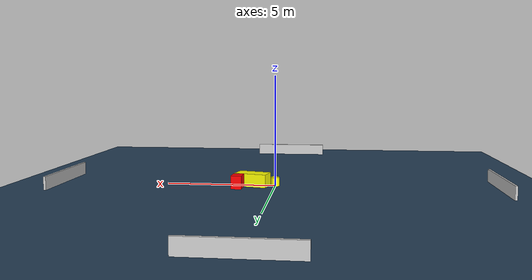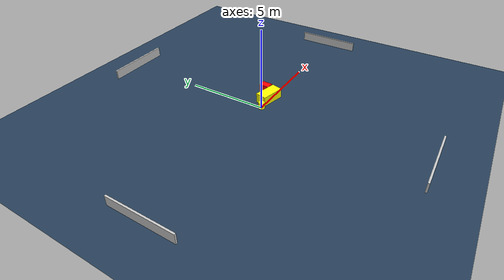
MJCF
<?xml version="1.0" ?>
<mujoco model="generated_environment">
  <option timestep="0.01" integrator="RK4" cone="elliptic"/>
  <default>
    <geom density="1"/>
  </default>
  <asset>
    <texture builtin="gradient" height="3072" name="skybox" rgb1="0.3 0.5 0.7" rgb2="0 0 0" type="skybox" width="512"/>
    <texture builtin="checker" height="300" name="groundplane" rgb1="0.2 0.3 0.4" rgb2="0.1 0.2 0.3" type="2d" width="300"/>
    <material name="groundplane" reflectance="0.2" texrepeat="5 5" texture="groundplane"/>
  </asset>
  <worldbody>
    <light dir="0 0 -1" directional="true" pos="0 0 1.5"/>
    <geom condim="3" friction="0.5 0.005 0.001" material="groundplane" name="floor" pos="0 0 0" size="0 0 0.05" type="plane"/>
    <body name="walls">
      <geom name="wall_1" condim="4" pos="-10.0 0.0 0.3" rgba="0.800000011920929 0.800000011920929 0.800000011920929 1.0" size="0.05 2.0 0.3" type="box"/>
      <geom name="wall_2" condim="4" pos="10.0 0.0 0.3" rgba="0.800000011920929 0.800000011920929 0.800000011920929 1.0" size="0.05 2.0 0.3" type="box"/>
      <geom name="wall_3" condim="4" pos="0.0 -10.0 0.3" rgba="0.800000011920929 0.800000011920929 0.800000011920929 1.0" size="2.0 0.05 0.3" type="box"/>
      <geom name="wall_4" condim="4" pos="0.0 10.0 0.3" rgba="0.800000011920929 0.800000011920929 0.800000011920929 1.0" size="2.0 0.05 0.3" type="box"/>
    </body>
    <body name="robot">
      <joint name="joint_x" type="slide" pos="0 0 0" axis="1 0 0"/>
      <joint name="joint_y" type="slide" pos="0 0 0" axis="0 1 0"/>
      <geom name="robot" type="cylinder" pos="0.0 0.0 0.2" size="0.2 0.2 0.0" mass="5.0" friction="1.0 0.005 0.0001" condim="4" rgba="1.0 1.0 0.0 1.0"/>
    </body>
    <body name="obstacle_1_movable">
      <geom name="obstacle_1_movable" condim="4" pos="1.0228989558811665 0.08777769086713914 0.3" euler="0 0 256.49517273011577" friction="0.0 0.005 0.001" rgba="1.0 1.0 0.0 1.0" size="0.3559910332218795 0.7326424417429223 0.3" type="box" mass="0.1"/>
      <joint type="free"/>
    </body>
    <body name="obstacle_2_static">
      <geom name="obstacle_2_static" condim="4" pos="1.6342199483158362 0.6690906630317265 0.3" euler="0 0 177.21934955137752" friction="0.0 0.005 0.001" rgba="1.0 0.0 0.0 1.0" size="0.23351324113881705 0.31292134630604634 0.3" type="box"/>
    </body>
  </worldbody>
  <actuator>
    <motor name="actuator_x" joint="joint_x" gear="1" ctrlrange="-1 1"/>
    <motor name="actuator_y" joint="joint_y" gear="1" ctrlrange="-1 1"/>
  </actuator>
</mujoco>
